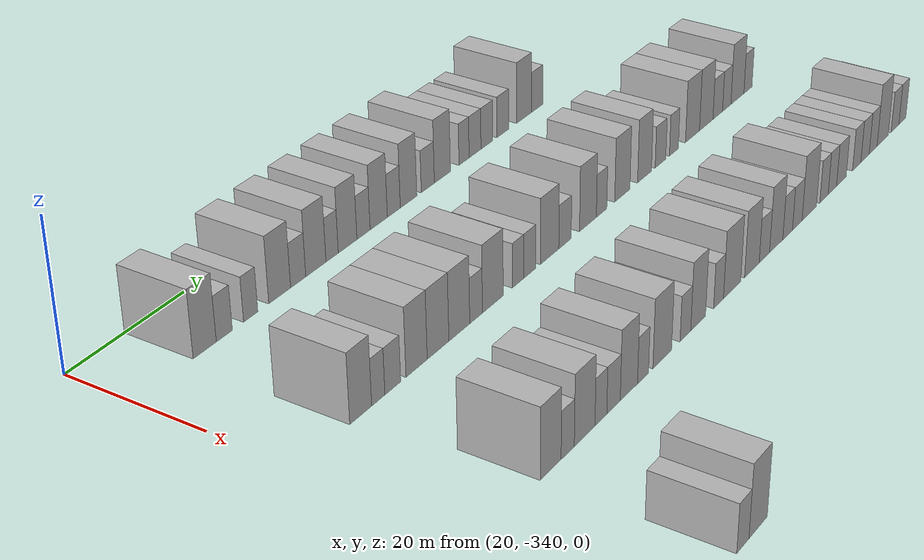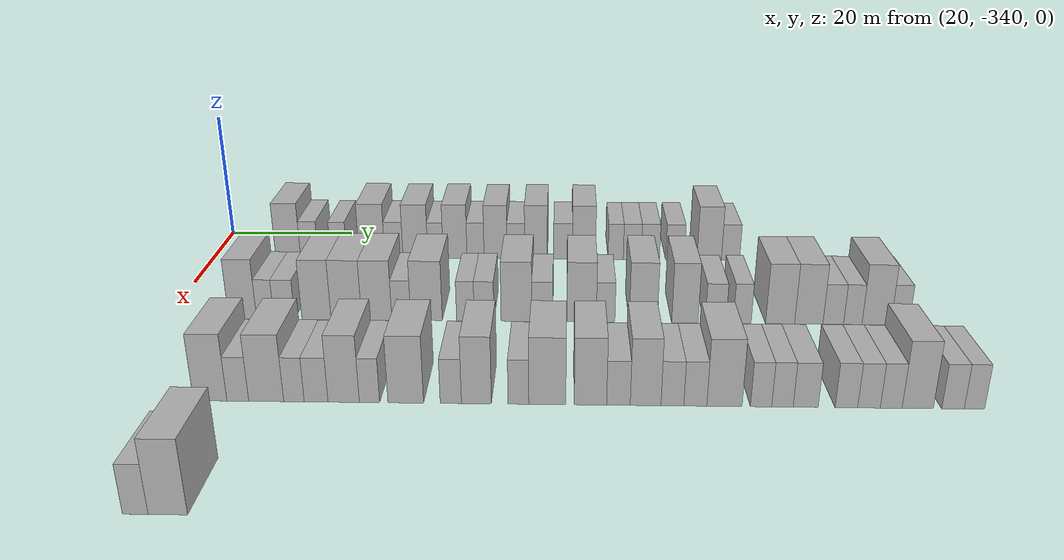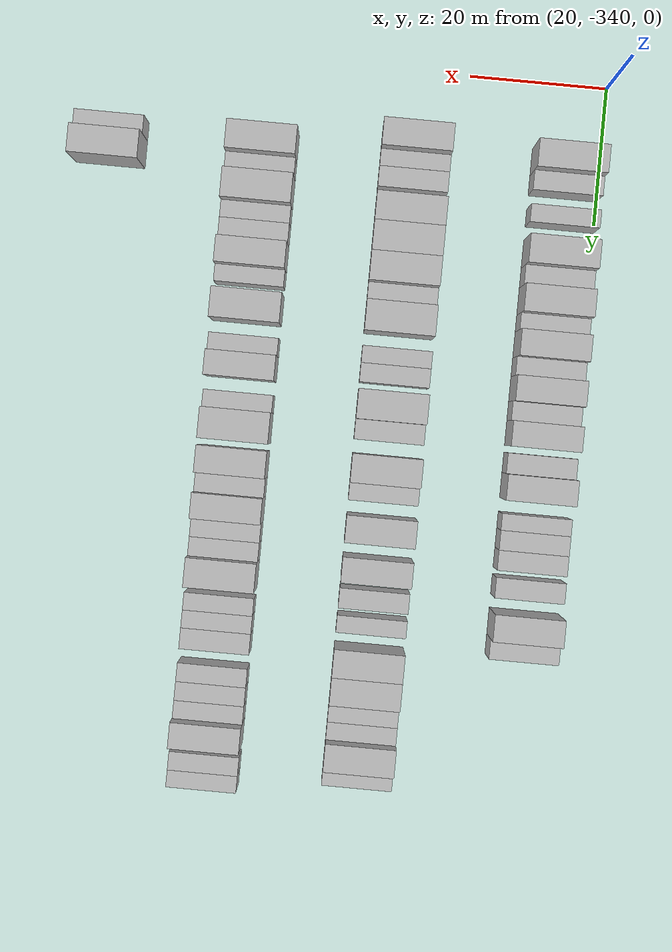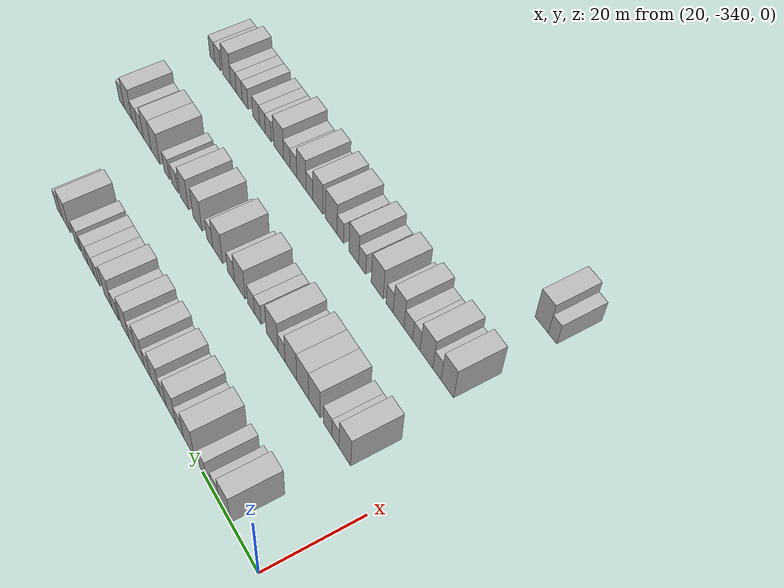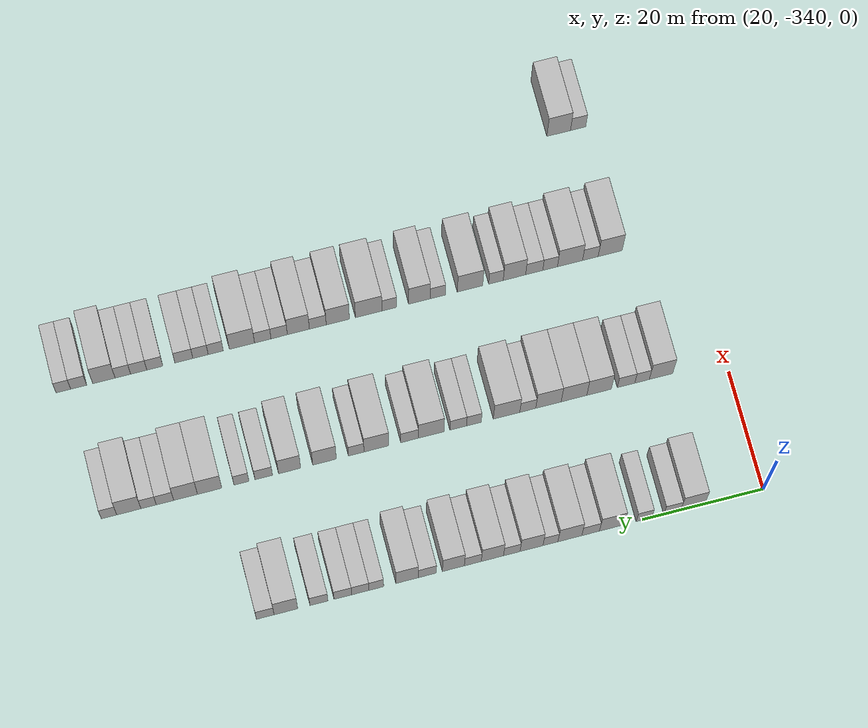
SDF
<sdf version="1.6">
 <world name="default">
  <model name="building_13">
   <static>1</static>
   <pose>25.0000 -328.2642 0 0.000000 0.000000 0.000000</pose>
   <link name="link">
    <pose>0 0 4.50 0 0 0</pose>
    <collision name="collision"><geometry><box><size>10.0000 3.9845 9.0000</size></box></geometry></collision>
    <visual name="visual">
     <cast_shadows>0</cast_shadows>
     <geometry><box><size>10.0000 3.9845 9.0000</size></box></geometry>
     <material>
      <script>
       <uri>model://HANNAS_wall/materials/scripts</uri>
       <uri>model://HANNAS_wall/materials/textures</uri>
       <name>vrc/HANNAS_wall</name>
      </script>
     </material>
    </visual>
   </link>
  </model>
  <model name="building_14">
   <static>1</static>
   <pose>25.0000 -324.8648 0 0.000000 0.000000 0.000000</pose>
   <link name="link">
    <pose>0 0 3.00 0 0 0</pose>
    <collision name="collision"><geometry><box><size>10.0000 2.8144 6.0000</size></box></geometry></collision>
    <visual name="visual">
     <cast_shadows>0</cast_shadows>
     <geometry><box><size>10.0000 2.8144 6.0000</size></box></geometry>
     <material>
      <script>
       <uri>model://HANNAS_wall/materials/scripts</uri>
       <uri>model://HANNAS_wall/materials/textures</uri>
       <name>vrc/HANNAS_wall</name>
      </script>
     </material>
    </visual>
   </link>
  </model>
  <model name="building_15">
   <static>1</static>
   <pose>25.0000 -320.1653 0 0.000000 0.000000 0.000000</pose>
   <link name="link">
    <pose>0 0 3.00 0 0 0</pose>
    <collision name="collision"><geometry><box><size>10.0000 2.5846 6.0000</size></box></geometry></collision>
    <visual name="visual">
     <cast_shadows>0</cast_shadows>
     <geometry><box><size>10.0000 2.5846 6.0000</size></box></geometry>
     <material>
      <script>
       <uri>model://HANNAS_wall/materials/scripts</uri>
       <uri>model://HANNAS_wall/materials/textures</uri>
       <name>vrc/HANNAS_wall</name>
      </script>
     </material>
    </visual>
   </link>
  </model>
  <model name="building_16">
   <static>1</static>
   <pose>25.0000 -314.8263 0 0.000000 0.000000 0.000000</pose>
   <link name="link">
    <pose>0 0 4.50 0 0 0</pose>
    <collision name="collision"><geometry><box><size>10.0000 4.0934 9.0000</size></box></geometry></collision>
    <visual name="visual">
     <cast_shadows>0</cast_shadows>
     <geometry><box><size>10.0000 4.0934 9.0000</size></box></geometry>
     <material>
      <script>
       <uri>model://HANNAS_wall/materials/scripts</uri>
       <uri>model://HANNAS_wall/materials/textures</uri>
       <name>vrc/HANNAS_wall</name>
      </script>
     </material>
    </visual>
   </link>
  </model>
  <model name="building_17">
   <static>1</static>
   <pose>25.0000 -311.3270 0 0.000000 0.000000 0.000000</pose>
   <link name="link">
    <pose>0 0 3.00 0 0 0</pose>
    <collision name="collision"><geometry><box><size>10.0000 2.9054 6.0000</size></box></geometry></collision>
    <visual name="visual">
     <cast_shadows>0</cast_shadows>
     <geometry><box><size>10.0000 2.9054 6.0000</size></box></geometry>
     <material>
      <script>
       <uri>model://HANNAS_wall/materials/scripts</uri>
       <uri>model://HANNAS_wall/materials/textures</uri>
       <name>vrc/HANNAS_wall</name>
      </script>
     </material>
    </visual>
   </link>
  </model>
  <model name="building_18">
   <static>1</static>
   <pose>25.0000 -307.8959 0 0.000000 0.000000 0.000000</pose>
   <link name="link">
    <pose>0 0 4.50 0 0 0</pose>
    <collision name="collision"><geometry><box><size>10.0000 3.9567 9.0000</size></box></geometry></collision>
    <visual name="visual">
     <cast_shadows>0</cast_shadows>
     <geometry><box><size>10.0000 3.9567 9.0000</size></box></geometry>
     <material>
      <script>
       <uri>model://HANNAS_wall/materials/scripts</uri>
       <uri>model://HANNAS_wall/materials/textures</uri>
       <name>vrc/HANNAS_wall</name>
      </script>
     </material>
    </visual>
   </link>
  </model>
  <model name="building_19">
   <static>1</static>
   <pose>25.0000 -304.6905 0 0.000000 0.000000 0.000000</pose>
   <link name="link">
    <pose>0 0 3.00 0 0 0</pose>
    <collision name="collision"><geometry><box><size>10.0000 2.4542 6.0000</size></box></geometry></collision>
    <visual name="visual">
     <cast_shadows>0</cast_shadows>
     <geometry><box><size>10.0000 2.4542 6.0000</size></box></geometry>
     <material>
      <script>
       <uri>model://HANNAS_wall/materials/scripts</uri>
       <uri>model://HANNAS_wall/materials/textures</uri>
       <name>vrc/HANNAS_wall</name>
      </script>
     </material>
    </visual>
   </link>
  </model>
  <model name="building_20">
   <static>1</static>
   <pose>25.0000 -301.5660 0 0.000000 0.000000 0.000000</pose>
   <link name="link">
    <pose>0 0 4.50 0 0 0</pose>
    <collision name="collision"><geometry><box><size>10.0000 3.7947 9.0000</size></box></geometry></collision>
    <visual name="visual">
     <cast_shadows>0</cast_shadows>
     <geometry><box><size>10.0000 3.7947 9.0000</size></box></geometry>
     <material>
      <script>
       <uri>model://HANNAS_wall/materials/scripts</uri>
       <uri>model://HANNAS_wall/materials/textures</uri>
       <name>vrc/HANNAS_wall</name>
      </script>
     </material>
    </visual>
   </link>
  </model>
  <model name="building_21">
   <static>1</static>
   <pose>25.0000 -298.3060 0 0.000000 0.000000 0.000000</pose>
   <link name="link">
    <pose>0 0 3.00 0 0 0</pose>
    <collision name="collision"><geometry><box><size>10.0000 2.7253 6.0000</size></box></geometry></collision>
    <visual name="visual">
     <cast_shadows>0</cast_shadows>
     <geometry><box><size>10.0000 2.7253 6.0000</size></box></geometry>
     <material>
      <script>
       <uri>model://HANNAS_wall/materials/scripts</uri>
       <uri>model://HANNAS_wall/materials/textures</uri>
       <name>vrc/HANNAS_wall</name>
      </script>
     </material>
    </visual>
   </link>
  </model>
  <model name="building_22">
   <static>1</static>
   <pose>25.0000 -295.1151 0 0.000000 0.000000 0.000000</pose>
   <link name="link">
    <pose>0 0 4.50 0 0 0</pose>
    <collision name="collision"><geometry><box><size>10.0000 3.6565 9.0000</size></box></geometry></collision>
    <visual name="visual">
     <cast_shadows>0</cast_shadows>
     <geometry><box><size>10.0000 3.6565 9.0000</size></box></geometry>
     <material>
      <script>
       <uri>model://HANNAS_wall/materials/scripts</uri>
       <uri>model://HANNAS_wall/materials/textures</uri>
       <name>vrc/HANNAS_wall</name>
      </script>
     </material>
    </visual>
   </link>
  </model>
  <model name="building_23">
   <static>1</static>
   <pose>25.0000 -291.8948 0 0.000000 0.000000 0.000000</pose>
   <link name="link">
    <pose>0 0 3.00 0 0 0</pose>
    <collision name="collision"><geometry><box><size>10.0000 2.7841 6.0000</size></box></geometry></collision>
    <visual name="visual">
     <cast_shadows>0</cast_shadows>
     <geometry><box><size>10.0000 2.7841 6.0000</size></box></geometry>
     <material>
      <script>
       <uri>model://HANNAS_wall/materials/scripts</uri>
       <uri>model://HANNAS_wall/materials/textures</uri>
       <name>vrc/HANNAS_wall</name>
      </script>
     </material>
    </visual>
   </link>
  </model>
  <model name="building_24">
   <static>1</static>
   <pose>25.0000 -288.6944 0 0.000000 0.000000 0.000000</pose>
   <link name="link">
    <pose>0 0 4.50 0 0 0</pose>
    <collision name="collision"><geometry><box><size>10.0000 3.6165 9.0000</size></box></geometry></collision>
    <visual name="visual">
     <cast_shadows>0</cast_shadows>
     <geometry><box><size>10.0000 3.6165 9.0000</size></box></geometry>
     <material>
      <script>
       <uri>model://HANNAS_wall/materials/scripts</uri>
       <uri>model://HANNAS_wall/materials/textures</uri>
       <name>vrc/HANNAS_wall</name>
      </script>
     </material>
    </visual>
   </link>
  </model>
  <model name="building_25">
   <static>1</static>
   <pose>25.0000 -284.4066 0 0.000000 0.000000 0.000000</pose>
   <link name="link">
    <pose>0 0 3.00 0 0 0</pose>
    <collision name="collision"><geometry><box><size>10.0000 2.9592 6.0000</size></box></geometry></collision>
    <visual name="visual">
     <cast_shadows>0</cast_shadows>
     <geometry><box><size>10.0000 2.9592 6.0000</size></box></geometry>
     <material>
      <script>
       <uri>model://HANNAS_wall/materials/scripts</uri>
       <uri>model://HANNAS_wall/materials/textures</uri>
       <name>vrc/HANNAS_wall</name>
      </script>
     </material>
    </visual>
   </link>
  </model>
  <model name="building_26">
   <static>1</static>
   <pose>25.0000 -281.0877 0 0.000000 0.000000 0.000000</pose>
   <link name="link">
    <pose>0 0 4.50 0 0 0</pose>
    <collision name="collision"><geometry><box><size>10.0000 3.6786 9.0000</size></box></geometry></collision>
    <visual name="visual">
     <cast_shadows>0</cast_shadows>
     <geometry><box><size>10.0000 3.6786 9.0000</size></box></geometry>
     <material>
      <script>
       <uri>model://HANNAS_wall/materials/scripts</uri>
       <uri>model://HANNAS_wall/materials/textures</uri>
       <name>vrc/HANNAS_wall</name>
      </script>
     </material>
    </visual>
   </link>
  </model>
  <model name="building_27">
   <static>1</static>
   <pose>25.0000 -276.0480 0 0.000000 0.000000 0.000000</pose>
   <link name="link">
    <pose>0 0 3.00 0 0 0</pose>
    <collision name="collision"><geometry><box><size>10.0000 2.4007 6.0000</size></box></geometry></collision>
    <visual name="visual">
     <cast_shadows>0</cast_shadows>
     <geometry><box><size>10.0000 2.4007 6.0000</size></box></geometry>
     <material>
      <script>
       <uri>model://HANNAS_wall/materials/scripts</uri>
       <uri>model://HANNAS_wall/materials/textures</uri>
       <name>vrc/HANNAS_wall</name>
      </script>
     </material>
    </visual>
   </link>
  </model>
  <model name="building_28">
   <static>1</static>
   <pose>25.0000 -273.4264 0 0.000000 0.000000 0.000000</pose>
   <link name="link">
    <pose>0 0 3.00 0 0 0</pose>
    <collision name="collision"><geometry><box><size>10.0000 2.8424 6.0000</size></box></geometry></collision>
    <visual name="visual">
     <cast_shadows>0</cast_shadows>
     <geometry><box><size>10.0000 2.8424 6.0000</size></box></geometry>
     <material>
      <script>
       <uri>model://HANNAS_wall/materials/scripts</uri>
       <uri>model://HANNAS_wall/materials/textures</uri>
       <name>vrc/HANNAS_wall</name>
      </script>
     </material>
    </visual>
   </link>
  </model>
  <model name="building_29">
   <static>1</static>
   <pose>25.0000 -270.5645 0 0.000000 0.000000 0.000000</pose>
   <link name="link">
    <pose>0 0 3.00 0 0 0</pose>
    <collision name="collision"><geometry><box><size>10.0000 2.8814 6.0000</size></box></geometry></collision>
    <visual name="visual">
     <cast_shadows>0</cast_shadows>
     <geometry><box><size>10.0000 2.8814 6.0000</size></box></geometry>
     <material>
      <script>
       <uri>model://HANNAS_wall/materials/scripts</uri>
       <uri>model://HANNAS_wall/materials/textures</uri>
       <name>vrc/HANNAS_wall</name>
      </script>
     </material>
    </visual>
   </link>
  </model>
  <model name="building_30">
   <static>1</static>
   <pose>25.0000 -266.6533 0 0.000000 0.000000 0.000000</pose>
   <link name="link">
    <pose>0 0 3.00 0 0 0</pose>
    <collision name="collision"><geometry><box><size>10.0000 2.9410 6.0000</size></box></geometry></collision>
    <visual name="visual">
     <cast_shadows>0</cast_shadows>
     <geometry><box><size>10.0000 2.9410 6.0000</size></box></geometry>
     <material>
      <script>
       <uri>model://HANNAS_wall/materials/scripts</uri>
       <uri>model://HANNAS_wall/materials/textures</uri>
       <name>vrc/HANNAS_wall</name>
      </script>
     </material>
    </visual>
   </link>
  </model>
  <model name="building_31">
   <static>1</static>
   <pose>25.0000 -261.2503 0 0.000000 0.000000 0.000000</pose>
   <link name="link">
    <pose>0 0 4.50 0 0 0</pose>
    <collision name="collision"><geometry><box><size>10.0000 3.8649 9.0000</size></box></geometry></collision>
    <visual name="visual">
     <cast_shadows>0</cast_shadows>
     <geometry><box><size>10.0000 3.8649 9.0000</size></box></geometry>
     <material>
      <script>
       <uri>model://HANNAS_wall/materials/scripts</uri>
       <uri>model://HANNAS_wall/materials/textures</uri>
       <name>vrc/HANNAS_wall</name>
      </script>
     </material>
    </visual>
   </link>
  </model>
  <model name="building_32">
   <static>1</static>
   <pose>25.0000 -257.8814 0 0.000000 0.000000 0.000000</pose>
   <link name="link">
    <pose>0 0 3.00 0 0 0</pose>
    <collision name="collision"><geometry><box><size>10.0000 2.8729 6.0000</size></box></geometry></collision>
    <visual name="visual">
     <cast_shadows>0</cast_shadows>
     <geometry><box><size>10.0000 2.8729 6.0000</size></box></geometry>
     <material>
      <script>
       <uri>model://HANNAS_wall/materials/scripts</uri>
       <uri>model://HANNAS_wall/materials/textures</uri>
       <name>vrc/HANNAS_wall</name>
      </script>
     </material>
    </visual>
   </link>
  </model>
  <model name="building_192">
   <static>1</static>
   <pose>47.0000 -329.2174 0 0.000000 0.000000 0.000000</pose>
   <link name="link">
    <pose>0 0 4.50 0 0 0</pose>
    <collision name="collision"><geometry><box><size>10.0000 3.9298 9.0000</size></box></geometry></collision>
    <visual name="visual">
     <cast_shadows>0</cast_shadows>
     <geometry><box><size>10.0000 3.9298 9.0000</size></box></geometry>
     <material>
      <script>
       <uri>model://HANNAS_wall/materials/scripts</uri>
       <uri>model://HANNAS_wall/materials/textures</uri>
       <name>vrc/HANNAS_wall</name>
      </script>
     </material>
    </visual>
   </link>
  </model>
  <model name="building_193">
   <static>1</static>
   <pose>47.0000 -326.0376 0 0.000000 0.000000 0.000000</pose>
   <link name="link">
    <pose>0 0 3.00 0 0 0</pose>
    <collision name="collision"><geometry><box><size>10.0000 2.4299 6.0000</size></box></geometry></collision>
    <visual name="visual">
     <cast_shadows>0</cast_shadows>
     <geometry><box><size>10.0000 2.4299 6.0000</size></box></geometry>
     <material>
      <script>
       <uri>model://HANNAS_wall/materials/scripts</uri>
       <uri>model://HANNAS_wall/materials/textures</uri>
       <name>vrc/HANNAS_wall</name>
      </script>
     </material>
    </visual>
   </link>
  </model>
  <model name="building_194">
   <static>1</static>
   <pose>47.0000 -323.3545 0 0.000000 0.000000 0.000000</pose>
   <link name="link">
    <pose>0 0 3.00 0 0 0</pose>
    <collision name="collision"><geometry><box><size>10.0000 2.9361 6.0000</size></box></geometry></collision>
    <visual name="visual">
     <cast_shadows>0</cast_shadows>
     <geometry><box><size>10.0000 2.9361 6.0000</size></box></geometry>
     <material>
      <script>
       <uri>model://HANNAS_wall/materials/scripts</uri>
       <uri>model://HANNAS_wall/materials/textures</uri>
       <name>vrc/HANNAS_wall</name>
      </script>
     </material>
    </visual>
   </link>
  </model>
  <model name="building_195">
   <static>1</static>
   <pose>47.0000 -318.8367 0 0.000000 0.000000 0.000000</pose>
   <link name="link">
    <pose>0 0 4.50 0 0 0</pose>
    <collision name="collision"><geometry><box><size>10.0000 4.0995 9.0000</size></box></geometry></collision>
    <visual name="visual">
     <cast_shadows>0</cast_shadows>
     <geometry><box><size>10.0000 4.0995 9.0000</size></box></geometry>
     <material>
      <script>
       <uri>model://HANNAS_wall/materials/scripts</uri>
       <uri>model://HANNAS_wall/materials/textures</uri>
       <name>vrc/HANNAS_wall</name>
      </script>
     </material>
    </visual>
   </link>
  </model>
  <model name="building_196">
   <static>1</static>
   <pose>47.0000 -314.6416 0 0.000000 0.000000 0.000000</pose>
   <link name="link">
    <pose>0 0 4.50 0 0 0</pose>
    <collision name="collision"><geometry><box><size>10.0000 4.2908 9.0000</size></box></geometry></collision>
    <visual name="visual">
     <cast_shadows>0</cast_shadows>
     <geometry><box><size>10.0000 4.2908 9.0000</size></box></geometry>
     <material>
      <script>
       <uri>model://HANNAS_wall/materials/scripts</uri>
       <uri>model://HANNAS_wall/materials/textures</uri>
       <name>vrc/HANNAS_wall</name>
      </script>
     </material>
    </visual>
   </link>
  </model>
  <model name="building_197">
   <static>1</static>
   <pose>47.0000 -310.3747 0 0.000000 0.000000 0.000000</pose>
   <link name="link">
    <pose>0 0 4.50 0 0 0</pose>
    <collision name="collision"><geometry><box><size>10.0000 4.2431 9.0000</size></box></geometry></collision>
    <visual name="visual">
     <cast_shadows>0</cast_shadows>
     <geometry><box><size>10.0000 4.2431 9.0000</size></box></geometry>
     <material>
      <script>
       <uri>model://HANNAS_wall/materials/scripts</uri>
       <uri>model://HANNAS_wall/materials/textures</uri>
       <name>vrc/HANNAS_wall</name>
      </script>
     </material>
    </visual>
   </link>
  </model>
  <model name="building_198">
   <static>1</static>
   <pose>47.0000 -306.9279 0 0.000000 0.000000 0.000000</pose>
   <link name="link">
    <pose>0 0 3.00 0 0 0</pose>
    <collision name="collision"><geometry><box><size>10.0000 2.6505 6.0000</size></box></geometry></collision>
    <visual name="visual">
     <cast_shadows>0</cast_shadows>
     <geometry><box><size>10.0000 2.6505 6.0000</size></box></geometry>
     <material>
      <script>
       <uri>model://HANNAS_wall/materials/scripts</uri>
       <uri>model://HANNAS_wall/materials/textures</uri>
       <name>vrc/HANNAS_wall</name>
      </script>
     </material>
    </visual>
   </link>
  </model>
  <model name="building_199">
   <static>1</static>
   <pose>47.0000 -303.3911 0 0.000000 0.000000 0.000000</pose>
   <link name="link">
    <pose>0 0 4.50 0 0 0</pose>
    <collision name="collision"><geometry><box><size>10.0000 4.4231 9.0000</size></box></geometry></collision>
    <visual name="visual">
     <cast_shadows>0</cast_shadows>
     <geometry><box><size>10.0000 4.4231 9.0000</size></box></geometry>
     <material>
      <script>
       <uri>model://HANNAS_wall/materials/scripts</uri>
       <uri>model://HANNAS_wall/materials/textures</uri>
       <name>vrc/HANNAS_wall</name>
      </script>
     </material>
    </visual>
   </link>
  </model>
  <model name="building_200">
   <static>1</static>
   <pose>47.0000 -297.9494 0 0.000000 0.000000 0.000000</pose>
   <link name="link">
    <pose>0 0 3.00 0 0 0</pose>
    <collision name="collision"><geometry><box><size>10.0000 2.4602 6.0000</size></box></geometry></collision>
    <visual name="visual">
     <cast_shadows>0</cast_shadows>
     <geometry><box><size>10.0000 2.4602 6.0000</size></box></geometry>
     <material>
      <script>
       <uri>model://HANNAS_wall/materials/scripts</uri>
       <uri>model://HANNAS_wall/materials/textures</uri>
       <name>vrc/HANNAS_wall</name>
      </script>
     </material>
    </visual>
   </link>
  </model>
  <model name="building_201">
   <static>1</static>
   <pose>47.0000 -295.3410 0 0.000000 0.000000 0.000000</pose>
   <link name="link">
    <pose>0 0 3.00 0 0 0</pose>
    <collision name="collision"><geometry><box><size>10.0000 2.7566 6.0000</size></box></geometry></collision>
    <visual name="visual">
     <cast_shadows>0</cast_shadows>
     <geometry><box><size>10.0000 2.7566 6.0000</size></box></geometry>
     <material>
      <script>
       <uri>model://HANNAS_wall/materials/scripts</uri>
       <uri>model://HANNAS_wall/materials/textures</uri>
       <name>vrc/HANNAS_wall</name>
      </script>
     </material>
    </visual>
   </link>
  </model>
  <model name="building_202">
   <static>1</static>
   <pose>47.0000 -290.8358 0 0.000000 0.000000 0.000000</pose>
   <link name="link">
    <pose>0 0 4.50 0 0 0</pose>
    <collision name="collision"><geometry><box><size>10.0000 4.2537 9.0000</size></box></geometry></collision>
    <visual name="visual">
     <cast_shadows>0</cast_shadows>
     <geometry><box><size>10.0000 4.2537 9.0000</size></box></geometry>
     <material>
      <script>
       <uri>model://HANNAS_wall/materials/scripts</uri>
       <uri>model://HANNAS_wall/materials/textures</uri>
       <name>vrc/HANNAS_wall</name>
      </script>
     </material>
    </visual>
   </link>
  </model>
  <model name="building_203">
   <static>1</static>
   <pose>47.0000 -287.2505 0 0.000000 0.000000 0.000000</pose>
   <link name="link">
    <pose>0 0 3.00 0 0 0</pose>
    <collision name="collision"><geometry><box><size>10.0000 2.9169 6.0000</size></box></geometry></collision>
    <visual name="visual">
     <cast_shadows>0</cast_shadows>
     <geometry><box><size>10.0000 2.9169 6.0000</size></box></geometry>
     <material>
      <script>
       <uri>model://HANNAS_wall/materials/scripts</uri>
       <uri>model://HANNAS_wall/materials/textures</uri>
       <name>vrc/HANNAS_wall</name>
      </script>
     </material>
    </visual>
   </link>
  </model>
  <model name="building_204">
   <static>1</static>
   <pose>47.0000 -281.7435 0 0.000000 0.000000 0.000000</pose>
   <link name="link">
    <pose>0 0 4.50 0 0 0</pose>
    <collision name="collision"><geometry><box><size>10.0000 4.0971 9.0000</size></box></geometry></collision>
    <visual name="visual">
     <cast_shadows>0</cast_shadows>
     <geometry><box><size>10.0000 4.0971 9.0000</size></box></geometry>
     <material>
      <script>
       <uri>model://HANNAS_wall/materials/scripts</uri>
       <uri>model://HANNAS_wall/materials/textures</uri>
       <name>vrc/HANNAS_wall</name>
      </script>
     </material>
    </visual>
   </link>
  </model>
  <model name="building_205">
   <static>1</static>
   <pose>47.0000 -278.4049 0 0.000000 0.000000 0.000000</pose>
   <link name="link">
    <pose>0 0 3.00 0 0 0</pose>
    <collision name="collision"><geometry><box><size>10.0000 2.5802 6.0000</size></box></geometry></collision>
    <visual name="visual">
     <cast_shadows>0</cast_shadows>
     <geometry><box><size>10.0000 2.5802 6.0000</size></box></geometry>
     <material>
      <script>
       <uri>model://HANNAS_wall/materials/scripts</uri>
       <uri>model://HANNAS_wall/materials/textures</uri>
       <name>vrc/HANNAS_wall</name>
      </script>
     </material>
    </visual>
   </link>
  </model>
  <model name="building_206">
   <static>1</static>
   <pose>47.0000 -273.1672 0 0.000000 0.000000 0.000000</pose>
   <link name="link">
    <pose>0 0 4.50 0 0 0</pose>
    <collision name="collision"><geometry><box><size>10.0000 3.8951 9.0000</size></box></geometry></collision>
    <visual name="visual">
     <cast_shadows>0</cast_shadows>
     <geometry><box><size>10.0000 3.8951 9.0000</size></box></geometry>
     <material>
      <script>
       <uri>model://HANNAS_wall/materials/scripts</uri>
       <uri>model://HANNAS_wall/materials/textures</uri>
       <name>vrc/HANNAS_wall</name>
      </script>
     </material>
    </visual>
   </link>
  </model>
  <model name="building_207">
   <static>1</static>
   <pose>47.0000 -267.3918 0 0.000000 0.000000 0.000000</pose>
   <link name="link">
    <pose>0 0 4.50 0 0 0</pose>
    <collision name="collision"><geometry><box><size>10.0000 3.6556 9.0000</size></box></geometry></collision>
    <visual name="visual">
     <cast_shadows>0</cast_shadows>
     <geometry><box><size>10.0000 3.6556 9.0000</size></box></geometry>
     <material>
      <script>
       <uri>model://HANNAS_wall/materials/scripts</uri>
       <uri>model://HANNAS_wall/materials/textures</uri>
       <name>vrc/HANNAS_wall</name>
      </script>
     </material>
    </visual>
   </link>
  </model>
  <model name="building_208">
   <static>1</static>
   <pose>47.0000 -263.1202 0 0.000000 0.000000 0.000000</pose>
   <link name="link">
    <pose>0 0 3.00 0 0 0</pose>
    <collision name="collision"><geometry><box><size>10.0000 2.8876 6.0000</size></box></geometry></collision>
    <visual name="visual">
     <cast_shadows>0</cast_shadows>
     <geometry><box><size>10.0000 2.8876 6.0000</size></box></geometry>
     <material>
      <script>
       <uri>model://HANNAS_wall/materials/scripts</uri>
       <uri>model://HANNAS_wall/materials/textures</uri>
       <name>vrc/HANNAS_wall</name>
      </script>
     </material>
    </visual>
   </link>
  </model>
  <model name="building_209">
   <static>1</static>
   <pose>47.0000 -259.4439 0 0.000000 0.000000 0.000000</pose>
   <link name="link">
    <pose>0 0 3.00 0 0 0</pose>
    <collision name="collision"><geometry><box><size>10.0000 2.4650 6.0000</size></box></geometry></collision>
    <visual name="visual">
     <cast_shadows>0</cast_shadows>
     <geometry><box><size>10.0000 2.4650 6.0000</size></box></geometry>
     <material>
      <script>
       <uri>model://HANNAS_wall/materials/scripts</uri>
       <uri>model://HANNAS_wall/materials/textures</uri>
       <name>vrc/HANNAS_wall</name>
      </script>
     </material>
    </visual>
   </link>
  </model>
  <model name="building_210">
   <static>1</static>
   <pose>47.0000 -254.2048 0 0.000000 0.000000 0.000000</pose>
   <link name="link">
    <pose>0 0 4.50 0 0 0</pose>
    <collision name="collision"><geometry><box><size>10.0000 4.0132 9.0000</size></box></geometry></collision>
    <visual name="visual">
     <cast_shadows>0</cast_shadows>
     <geometry><box><size>10.0000 4.0132 9.0000</size></box></geometry>
     <material>
      <script>
       <uri>model://HANNAS_wall/materials/scripts</uri>
       <uri>model://HANNAS_wall/materials/textures</uri>
       <name>vrc/HANNAS_wall</name>
      </script>
     </material>
    </visual>
   </link>
  </model>
  <model name="building_211">
   <static>1</static>
   <pose>47.0000 -250.2415 0 0.000000 0.000000 0.000000</pose>
   <link name="link">
    <pose>0 0 4.50 0 0 0</pose>
    <collision name="collision"><geometry><box><size>10.0000 3.9133 9.0000</size></box></geometry></collision>
    <visual name="visual">
     <cast_shadows>0</cast_shadows>
     <geometry><box><size>10.0000 3.9133 9.0000</size></box></geometry>
     <material>
      <script>
       <uri>model://HANNAS_wall/materials/scripts</uri>
       <uri>model://HANNAS_wall/materials/textures</uri>
       <name>vrc/HANNAS_wall</name>
      </script>
     </material>
    </visual>
   </link>
  </model>
  <model name="building_212">
   <static>1</static>
   <pose>47.0000 -246.8588 0 0.000000 0.000000 0.000000</pose>
   <link name="link">
    <pose>0 0 3.00 0 0 0</pose>
    <collision name="collision"><geometry><box><size>10.0000 2.8521 6.0000</size></box></geometry></collision>
    <visual name="visual">
     <cast_shadows>0</cast_shadows>
     <geometry><box><size>10.0000 2.8521 6.0000</size></box></geometry>
     <material>
      <script>
       <uri>model://HANNAS_wall/materials/scripts</uri>
       <uri>model://HANNAS_wall/materials/textures</uri>
       <name>vrc/HANNAS_wall</name>
      </script>
     </material>
    </visual>
   </link>
  </model>
  <model name="building_213">
   <static>1</static>
   <pose>47.0000 -244.1680 0 0.000000 0.000000 0.000000</pose>
   <link name="link">
    <pose>0 0 3.00 0 0 0</pose>
    <collision name="collision"><geometry><box><size>10.0000 2.5295 6.0000</size></box></geometry></collision>
    <visual name="visual">
     <cast_shadows>0</cast_shadows>
     <geometry><box><size>10.0000 2.5295 6.0000</size></box></geometry>
     <material>
      <script>
       <uri>model://HANNAS_wall/materials/scripts</uri>
       <uri>model://HANNAS_wall/materials/textures</uri>
       <name>vrc/HANNAS_wall</name>
      </script>
     </material>
    </visual>
   </link>
  </model>
  <model name="building_214">
   <static>1</static>
   <pose>47.0000 -240.9174 0 0.000000 0.000000 0.000000</pose>
   <link name="link">
    <pose>0 0 4.50 0 0 0</pose>
    <collision name="collision"><geometry><box><size>10.0000 3.9717 9.0000</size></box></geometry></collision>
    <visual name="visual">
     <cast_shadows>0</cast_shadows>
     <geometry><box><size>10.0000 3.9717 9.0000</size></box></geometry>
     <material>
      <script>
       <uri>model://HANNAS_wall/materials/scripts</uri>
       <uri>model://HANNAS_wall/materials/textures</uri>
       <name>vrc/HANNAS_wall</name>
      </script>
     </material>
    </visual>
   </link>
  </model>
  <model name="building_215">
   <static>1</static>
   <pose>47.0000 -237.6706 0 0.000000 0.000000 0.000000</pose>
   <link name="link">
    <pose>0 0 3.00 0 0 0</pose>
    <collision name="collision"><geometry><box><size>10.0000 2.5219 6.0000</size></box></geometry></collision>
    <visual name="visual">
     <cast_shadows>0</cast_shadows>
     <geometry><box><size>10.0000 2.5219 6.0000</size></box></geometry>
     <material>
      <script>
       <uri>model://HANNAS_wall/materials/scripts</uri>
       <uri>model://HANNAS_wall/materials/textures</uri>
       <name>vrc/HANNAS_wall</name>
      </script>
     </material>
    </visual>
   </link>
  </model>
  <model name="building_369">
   <static>1</static>
   <pose>69.0000 -326.8294 0 0.000000 0.000000 0.000000</pose>
   <link name="link">
    <pose>0 0 4.50 0 0 0</pose>
    <collision name="collision"><geometry><box><size>10.0000 4.0660 9.0000</size></box></geometry></collision>
    <visual name="visual">
     <cast_shadows>0</cast_shadows>
     <geometry><box><size>10.0000 4.0660 9.0000</size></box></geometry>
     <material>
      <script>
       <uri>model://HANNAS_wall/materials/scripts</uri>
       <uri>model://HANNAS_wall/materials/textures</uri>
       <name>vrc/HANNAS_wall</name>
      </script>
     </material>
    </visual>
   </link>
  </model>
  <model name="building_370">
   <static>1</static>
   <pose>69.0000 -323.4740 0 0.000000 0.000000 0.000000</pose>
   <link name="link">
    <pose>0 0 3.00 0 0 0</pose>
    <collision name="collision"><geometry><box><size>10.0000 2.6448 6.0000</size></box></geometry></collision>
    <visual name="visual">
     <cast_shadows>0</cast_shadows>
     <geometry><box><size>10.0000 2.6448 6.0000</size></box></geometry>
     <material>
      <script>
       <uri>model://HANNAS_wall/materials/scripts</uri>
       <uri>model://HANNAS_wall/materials/textures</uri>
       <name>vrc/HANNAS_wall</name>
      </script>
     </material>
    </visual>
   </link>
  </model>
  <model name="building_371">
   <static>1</static>
   <pose>69.0000 -320.0309 0 0.000000 0.000000 0.000000</pose>
   <link name="link">
    <pose>0 0 4.50 0 0 0</pose>
    <collision name="collision"><geometry><box><size>10.0000 4.2413 9.0000</size></box></geometry></collision>
    <visual name="visual">
     <cast_shadows>0</cast_shadows>
     <geometry><box><size>10.0000 4.2413 9.0000</size></box></geometry>
     <material>
      <script>
       <uri>model://HANNAS_wall/materials/scripts</uri>
       <uri>model://HANNAS_wall/materials/textures</uri>
       <name>vrc/HANNAS_wall</name>
      </script>
     </material>
    </visual>
   </link>
  </model>
  <model name="building_372">
   <static>1</static>
   <pose>69.0000 -316.6695 0 0.000000 0.000000 0.000000</pose>
   <link name="link">
    <pose>0 0 3.00 0 0 0</pose>
    <collision name="collision"><geometry><box><size>10.0000 2.4816 6.0000</size></box></geometry></collision>
    <visual name="visual">
     <cast_shadows>0</cast_shadows>
     <geometry><box><size>10.0000 2.4816 6.0000</size></box></geometry>
     <material>
      <script>
       <uri>model://HANNAS_wall/materials/scripts</uri>
       <uri>model://HANNAS_wall/materials/textures</uri>
       <name>vrc/HANNAS_wall</name>
      </script>
     </material>
    </visual>
   </link>
  </model>
  <model name="building_373">
   <static>1</static>
   <pose>69.0000 -313.9869 0 0.000000 0.000000 0.000000</pose>
   <link name="link">
    <pose>0 0 3.00 0 0 0</pose>
    <collision name="collision"><geometry><box><size>10.0000 2.8836 6.0000</size></box></geometry></collision>
    <visual name="visual">
     <cast_shadows>0</cast_shadows>
     <geometry><box><size>10.0000 2.8836 6.0000</size></box></geometry>
     <material>
      <script>
       <uri>model://HANNAS_wall/materials/scripts</uri>
       <uri>model://HANNAS_wall/materials/textures</uri>
       <name>vrc/HANNAS_wall</name>
      </script>
     </material>
    </visual>
   </link>
  </model>
  <model name="building_374">
   <static>1</static>
   <pose>69.0000 -310.6556 0 0.000000 0.000000 0.000000</pose>
   <link name="link">
    <pose>0 0 4.50 0 0 0</pose>
    <collision name="collision"><geometry><box><size>10.0000 3.7791 9.0000</size></box></geometry></collision>
    <visual name="visual">
     <cast_shadows>0</cast_shadows>
     <geometry><box><size>10.0000 3.7791 9.0000</size></box></geometry>
     <material>
      <script>
       <uri>model://HANNAS_wall/materials/scripts</uri>
       <uri>model://HANNAS_wall/materials/textures</uri>
       <name>vrc/HANNAS_wall</name>
      </script>
     </material>
    </visual>
   </link>
  </model>
  <model name="building_375">
   <static>1</static>
   <pose>69.0000 -307.5397 0 0.000000 0.000000 0.000000</pose>
   <link name="link">
    <pose>0 0 3.00 0 0 0</pose>
    <collision name="collision"><geometry><box><size>10.0000 2.4526 6.0000</size></box></geometry></collision>
    <visual name="visual">
     <cast_shadows>0</cast_shadows>
     <geometry><box><size>10.0000 2.4526 6.0000</size></box></geometry>
     <material>
      <script>
       <uri>model://HANNAS_wall/materials/scripts</uri>
       <uri>model://HANNAS_wall/materials/textures</uri>
       <name>vrc/HANNAS_wall</name>
      </script>
     </material>
    </visual>
   </link>
  </model>
  <model name="building_376">
   <static>1</static>
   <pose>69.0000 -303.1656 0 0.000000 0.000000 0.000000</pose>
   <link name="link">
    <pose>0 0 4.50 0 0 0</pose>
    <collision name="collision"><geometry><box><size>10.0000 4.2957 9.0000</size></box></geometry></collision>
    <visual name="visual">
     <cast_shadows>0</cast_shadows>
     <geometry><box><size>10.0000 4.2957 9.0000</size></box></geometry>
     <material>
      <script>
       <uri>model://HANNAS_wall/materials/scripts</uri>
       <uri>model://HANNAS_wall/materials/textures</uri>
       <name>vrc/HANNAS_wall</name>
      </script>
     </material>
    </visual>
   </link>
  </model>
  <model name="building_377">
   <static>1</static>
   <pose>69.0000 -297.7398 0 0.000000 0.000000 0.000000</pose>
   <link name="link">
    <pose>0 0 3.00 0 0 0</pose>
    <collision name="collision"><geometry><box><size>10.0000 2.5559 6.0000</size></box></geometry></collision>
    <visual name="visual">
     <cast_shadows>0</cast_shadows>
     <geometry><box><size>10.0000 2.5559 6.0000</size></box></geometry>
     <material>
      <script>
       <uri>model://HANNAS_wall/materials/scripts</uri>
       <uri>model://HANNAS_wall/materials/textures</uri>
       <name>vrc/HANNAS_wall</name>
      </script>
     </material>
    </visual>
   </link>
  </model>
  <model name="building_378">
   <static>1</static>
   <pose>69.0000 -294.6613 0 0.000000 0.000000 0.000000</pose>
   <link name="link">
    <pose>0 0 4.50 0 0 0</pose>
    <collision name="collision"><geometry><box><size>10.0000 3.6011 9.0000</size></box></geometry></collision>
    <visual name="visual">
     <cast_shadows>0</cast_shadows>
     <geometry><box><size>10.0000 3.6011 9.0000</size></box></geometry>
     <material>
      <script>
       <uri>model://HANNAS_wall/materials/scripts</uri>
       <uri>model://HANNAS_wall/materials/textures</uri>
       <name>vrc/HANNAS_wall</name>
      </script>
     </material>
    </visual>
   </link>
  </model>
  <model name="building_379">
   <static>1</static>
   <pose>69.0000 -289.6142 0 0.000000 0.000000 0.000000</pose>
   <link name="link">
    <pose>0 0 3.00 0 0 0</pose>
    <collision name="collision"><geometry><box><size>10.0000 2.4932 6.0000</size></box></geometry></collision>
    <visual name="visual">
     <cast_shadows>0</cast_shadows>
     <geometry><box><size>10.0000 2.4932 6.0000</size></box></geometry>
     <material>
      <script>
       <uri>model://HANNAS_wall/materials/scripts</uri>
       <uri>model://HANNAS_wall/materials/textures</uri>
       <name>vrc/HANNAS_wall</name>
      </script>
     </material>
    </visual>
   </link>
  </model>
  <model name="building_380">
   <static>1</static>
   <pose>69.0000 -286.1477 0 0.000000 0.000000 0.000000</pose>
   <link name="link">
    <pose>0 0 4.50 0 0 0</pose>
    <collision name="collision"><geometry><box><size>10.0000 4.4397 9.0000</size></box></geometry></collision>
    <visual name="visual">
     <cast_shadows>0</cast_shadows>
     <geometry><box><size>10.0000 4.4397 9.0000</size></box></geometry>
     <material>
      <script>
       <uri>model://HANNAS_wall/materials/scripts</uri>
       <uri>model://HANNAS_wall/materials/textures</uri>
       <name>vrc/HANNAS_wall</name>
      </script>
     </material>
    </visual>
   </link>
  </model>
  <model name="building_381">
   <static>1</static>
   <pose>69.0000 -280.9868 0 0.000000 0.000000 0.000000</pose>
   <link name="link">
    <pose>0 0 4.50 0 0 0</pose>
    <collision name="collision"><geometry><box><size>10.0000 3.8822 9.0000</size></box></geometry></collision>
    <visual name="visual">
     <cast_shadows>0</cast_shadows>
     <geometry><box><size>10.0000 3.8822 9.0000</size></box></geometry>
     <material>
      <script>
       <uri>model://HANNAS_wall/materials/scripts</uri>
       <uri>model://HANNAS_wall/materials/textures</uri>
       <name>vrc/HANNAS_wall</name>
      </script>
     </material>
    </visual>
   </link>
  </model>
  <model name="building_382">
   <static>1</static>
   <pose>69.0000 -277.6346 0 0.000000 0.000000 0.000000</pose>
   <link name="link">
    <pose>0 0 3.00 0 0 0</pose>
    <collision name="collision"><geometry><box><size>10.0000 2.8221 6.0000</size></box></geometry></collision>
    <visual name="visual">
     <cast_shadows>0</cast_shadows>
     <geometry><box><size>10.0000 2.8221 6.0000</size></box></geometry>
     <material>
      <script>
       <uri>model://HANNAS_wall/materials/scripts</uri>
       <uri>model://HANNAS_wall/materials/textures</uri>
       <name>vrc/HANNAS_wall</name>
      </script>
     </material>
    </visual>
   </link>
  </model>
  <model name="building_383">
   <static>1</static>
   <pose>69.0000 -274.3852 0 0.000000 0.000000 0.000000</pose>
   <link name="link">
    <pose>0 0 4.50 0 0 0</pose>
    <collision name="collision"><geometry><box><size>10.0000 3.6768 9.0000</size></box></geometry></collision>
    <visual name="visual">
     <cast_shadows>0</cast_shadows>
     <geometry><box><size>10.0000 3.6768 9.0000</size></box></geometry>
     <material>
      <script>
       <uri>model://HANNAS_wall/materials/scripts</uri>
       <uri>model://HANNAS_wall/materials/textures</uri>
       <name>vrc/HANNAS_wall</name>
      </script>
     </material>
    </visual>
   </link>
  </model>
  <model name="building_384">
   <static>1</static>
   <pose>69.0000 -271.1806 0 0.000000 0.000000 0.000000</pose>
   <link name="link">
    <pose>0 0 3.00 0 0 0</pose>
    <collision name="collision"><geometry><box><size>10.0000 2.7325 6.0000</size></box></geometry></collision>
    <visual name="visual">
     <cast_shadows>0</cast_shadows>
     <geometry><box><size>10.0000 2.7325 6.0000</size></box></geometry>
     <material>
      <script>
       <uri>model://HANNAS_wall/materials/scripts</uri>
       <uri>model://HANNAS_wall/materials/textures</uri>
       <name>vrc/HANNAS_wall</name>
      </script>
     </material>
    </visual>
   </link>
  </model>
  <model name="building_385">
   <static>1</static>
   <pose>69.0000 -268.4399 0 0.000000 0.000000 0.000000</pose>
   <link name="link">
    <pose>0 0 3.00 0 0 0</pose>
    <collision name="collision"><geometry><box><size>10.0000 2.7490 6.0000</size></box></geometry></collision>
    <visual name="visual">
     <cast_shadows>0</cast_shadows>
     <geometry><box><size>10.0000 2.7490 6.0000</size></box></geometry>
     <material>
      <script>
       <uri>model://HANNAS_wall/materials/scripts</uri>
       <uri>model://HANNAS_wall/materials/textures</uri>
       <name>vrc/HANNAS_wall</name>
      </script>
     </material>
    </visual>
   </link>
  </model>
  <model name="building_386">
   <static>1</static>
   <pose>69.0000 -264.9686 0 0.000000 0.000000 0.000000</pose>
   <link name="link">
    <pose>0 0 4.50 0 0 0</pose>
    <collision name="collision"><geometry><box><size>10.0000 4.1936 9.0000</size></box></geometry></collision>
    <visual name="visual">
     <cast_shadows>0</cast_shadows>
     <geometry><box><size>10.0000 4.1936 9.0000</size></box></geometry>
     <material>
      <script>
       <uri>model://HANNAS_wall/materials/scripts</uri>
       <uri>model://HANNAS_wall/materials/textures</uri>
       <name>vrc/HANNAS_wall</name>
      </script>
     </material>
    </visual>
   </link>
  </model>
  <model name="building_387">
   <static>1</static>
   <pose>69.0000 -260.6078 0 0.000000 0.000000 0.000000</pose>
   <link name="link">
    <pose>0 0 3.00 0 0 0</pose>
    <collision name="collision"><geometry><box><size>10.0000 2.5280 6.0000</size></box></geometry></collision>
    <visual name="visual">
     <cast_shadows>0</cast_shadows>
     <geometry><box><size>10.0000 2.5280 6.0000</size></box></geometry>
     <material>
      <script>
       <uri>model://HANNAS_wall/materials/scripts</uri>
       <uri>model://HANNAS_wall/materials/textures</uri>
       <name>vrc/HANNAS_wall</name>
      </script>
     </material>
    </visual>
   </link>
  </model>
  <model name="building_388">
   <static>1</static>
   <pose>69.0000 -258.0671 0 0.000000 0.000000 0.000000</pose>
   <link name="link">
    <pose>0 0 3.00 0 0 0</pose>
    <collision name="collision"><geometry><box><size>10.0000 2.5534 6.0000</size></box></geometry></collision>
    <visual name="visual">
     <cast_shadows>0</cast_shadows>
     <geometry><box><size>10.0000 2.5534 6.0000</size></box></geometry>
     <material>
      <script>
       <uri>model://HANNAS_wall/materials/scripts</uri>
       <uri>model://HANNAS_wall/materials/textures</uri>
       <name>vrc/HANNAS_wall</name>
      </script>
     </material>
    </visual>
   </link>
  </model>
  <model name="building_389">
   <static>1</static>
   <pose>69.0000 -255.2986 0 0.000000 0.000000 0.000000</pose>
   <link name="link">
    <pose>0 0 3.00 0 0 0</pose>
    <collision name="collision"><geometry><box><size>10.0000 2.9836 6.0000</size></box></geometry></collision>
    <visual name="visual">
     <cast_shadows>0</cast_shadows>
     <geometry><box><size>10.0000 2.9836 6.0000</size></box></geometry>
     <material>
      <script>
       <uri>model://HANNAS_wall/materials/scripts</uri>
       <uri>model://HANNAS_wall/materials/textures</uri>
       <name>vrc/HANNAS_wall</name>
      </script>
     </material>
    </visual>
   </link>
  </model>
  <model name="building_390">
   <static>1</static>
   <pose>69.0000 -250.4703 0 0.000000 0.000000 0.000000</pose>
   <link name="link">
    <pose>0 0 3.00 0 0 0</pose>
    <collision name="collision"><geometry><box><size>10.0000 2.6730 6.0000</size></box></geometry></collision>
    <visual name="visual">
     <cast_shadows>0</cast_shadows>
     <geometry><box><size>10.0000 2.6730 6.0000</size></box></geometry>
     <material>
      <script>
       <uri>model://HANNAS_wall/materials/scripts</uri>
       <uri>model://HANNAS_wall/materials/textures</uri>
       <name>vrc/HANNAS_wall</name>
      </script>
     </material>
    </visual>
   </link>
  </model>
  <model name="building_391">
   <static>1</static>
   <pose>69.0000 -247.7905 0 0.000000 0.000000 0.000000</pose>
   <link name="link">
    <pose>0 0 3.00 0 0 0</pose>
    <collision name="collision"><geometry><box><size>10.0000 2.6867 6.0000</size></box></geometry></collision>
    <visual name="visual">
     <cast_shadows>0</cast_shadows>
     <geometry><box><size>10.0000 2.6867 6.0000</size></box></geometry>
     <material>
      <script>
       <uri>model://HANNAS_wall/materials/scripts</uri>
       <uri>model://HANNAS_wall/materials/textures</uri>
       <name>vrc/HANNAS_wall</name>
      </script>
     </material>
    </visual>
   </link>
  </model>
  <model name="building_392">
   <static>1</static>
   <pose>69.0000 -245.1565 0 0.000000 0.000000 0.000000</pose>
   <link name="link">
    <pose>0 0 3.00 0 0 0</pose>
    <collision name="collision"><geometry><box><size>10.0000 2.5813 6.0000</size></box></geometry></collision>
    <visual name="visual">
     <cast_shadows>0</cast_shadows>
     <geometry><box><size>10.0000 2.5813 6.0000</size></box></geometry>
     <material>
      <script>
       <uri>model://HANNAS_wall/materials/scripts</uri>
       <uri>model://HANNAS_wall/materials/textures</uri>
       <name>vrc/HANNAS_wall</name>
      </script>
     </material>
    </visual>
   </link>
  </model>
  <model name="building_393">
   <static>1</static>
   <pose>69.0000 -242.0177 0 0.000000 0.000000 0.000000</pose>
   <link name="link">
    <pose>0 0 4.50 0 0 0</pose>
    <collision name="collision"><geometry><box><size>10.0000 3.6964 9.0000</size></box></geometry></collision>
    <visual name="visual">
     <cast_shadows>0</cast_shadows>
     <geometry><box><size>10.0000 3.6964 9.0000</size></box></geometry>
     <material>
      <script>
       <uri>model://HANNAS_wall/materials/scripts</uri>
       <uri>model://HANNAS_wall/materials/textures</uri>
       <name>vrc/HANNAS_wall</name>
      </script>
     </material>
    </visual>
   </link>
  </model>
  <model name="building_394">
   <static>1</static>
   <pose>69.0000 -237.8438 0 0.000000 0.000000 0.000000</pose>
   <link name="link">
    <pose>0 0 3.00 0 0 0</pose>
    <collision name="collision"><geometry><box><size>10.0000 2.6514 6.0000</size></box></geometry></collision>
    <visual name="visual">
     <cast_shadows>0</cast_shadows>
     <geometry><box><size>10.0000 2.6514 6.0000</size></box></geometry>
     <material>
      <script>
       <uri>model://HANNAS_wall/materials/scripts</uri>
       <uri>model://HANNAS_wall/materials/textures</uri>
       <name>vrc/HANNAS_wall</name>
      </script>
     </material>
    </visual>
   </link>
  </model>
  <model name="building_395">
   <static>1</static>
   <pose>69.0000 -235.3111 0 0.000000 0.000000 0.000000</pose>
   <link name="link">
    <pose>0 0 3.00 0 0 0</pose>
    <collision name="collision"><geometry><box><size>10.0000 2.4142 6.0000</size></box></geometry></collision>
    <visual name="visual">
     <cast_shadows>0</cast_shadows>
     <geometry><box><size>10.0000 2.4142 6.0000</size></box></geometry>
     <material>
      <script>
       <uri>model://HANNAS_wall/materials/scripts</uri>
       <uri>model://HANNAS_wall/materials/textures</uri>
       <name>vrc/HANNAS_wall</name>
      </script>
     </material>
    </visual>
   </link>
  </model>
  <model name="building_557">
   <static>1</static>
   <pose>91.0000 -327.4835 0 0.000000 0.000000 0.000000</pose>
   <link name="link">
    <pose>0 0 3.00 0 0 0</pose>
    <collision name="collision"><geometry><box><size>10.0000 2.6176 6.0000</size></box></geometry></collision>
    <visual name="visual">
     <cast_shadows>0</cast_shadows>
     <geometry><box><size>10.0000 2.6176 6.0000</size></box></geometry>
     <material>
      <script>
       <uri>model://HANNAS_wall/materials/scripts</uri>
       <uri>model://HANNAS_wall/materials/textures</uri>
       <name>vrc/HANNAS_wall</name>
      </script>
     </material>
    </visual>
   </link>
  </model>
  <model name="building_558">
   <static>1</static>
   <pose>91.0000 -324.1604 0 0.000000 0.000000 0.000000</pose>
   <link name="link">
    <pose>0 0 4.50 0 0 0</pose>
    <collision name="collision"><geometry><box><size>10.0000 4.0286 9.0000</size></box></geometry></collision>
    <visual name="visual">
     <cast_shadows>0</cast_shadows>
     <geometry><box><size>10.0000 4.0286 9.0000</size></box></geometry>
     <material>
      <script>
       <uri>model://HANNAS_wall/materials/scripts</uri>
       <uri>model://HANNAS_wall/materials/textures</uri>
       <name>vrc/HANNAS_wall</name>
      </script>
     </material>
    </visual>
   </link>
  </model>
 </world>
</sdf>
